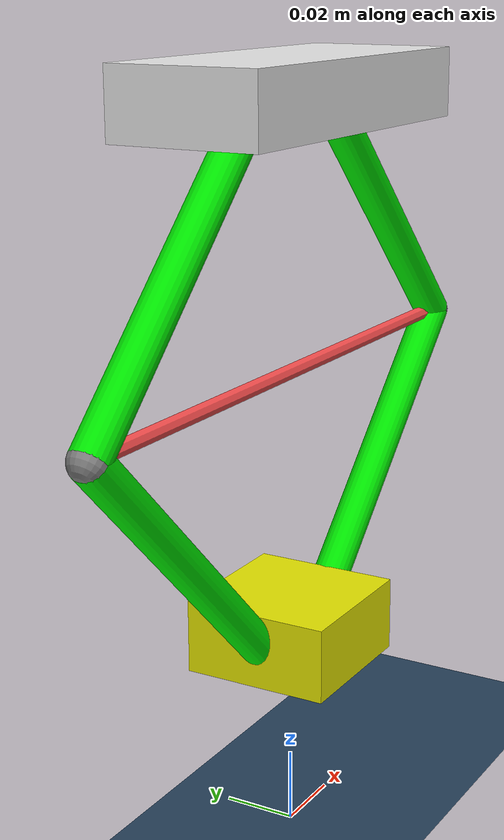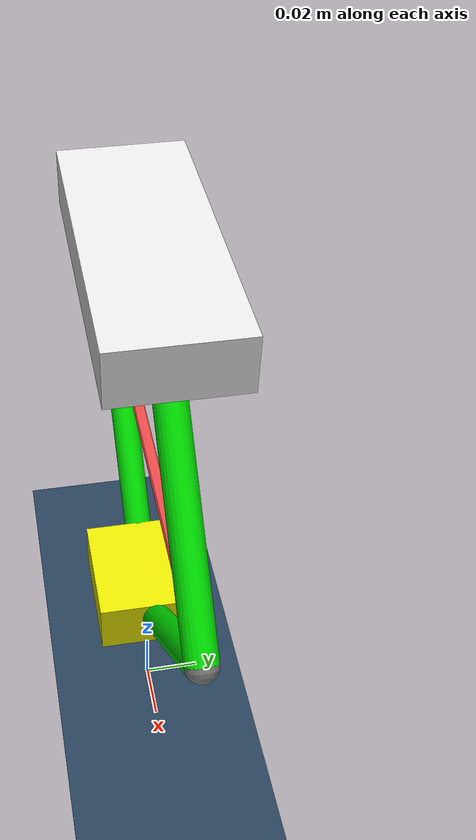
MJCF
<mujoco>
	<!-- 侧杆较长 -->
	<option timestep="0.0001" integrator="RK4" gravity="0 0 -10">
		<flag sensornoise="enable" contact="enable" energy="enable" />
	</option>

	<visual>
		<headlight diffuse="0.6 0.6 0.6" ambient="0.3 0.3 0.3" specular="0 0 0" />
		<rgba haze="0.15 0.25 0.35 1" />
		<global azimuth="150" elevation="-20" />
	</visual>

	<asset>
		<texture type="skybox" builtin="gradient" rgb1="0.3 0.5 0.7" rgb2="0 0 0" width="512"
			height="3072" />
		<texture type="2d" name="groundplane" builtin="checker" mark="edge" rgb1="0.2 0.3 0.4"
			rgb2="0.1 0.2 0.3"
			markrgb="0.8 0.8 0.8" width="300" height="300" />
		<material name="groundplane" texture="groundplane" texuniform="true" texrepeat="5 5"
			reflectance="0.2" />
	</asset>

	<default>
		<equality solref="0.005 1" />
	</default>

	<worldbody>
		<light pos="0 0 0.3" dir="0 0 -1" directional="false" />
		<light diffuse=".5 .5 .5" pos="0 0 0.3" dir="0 0 -1" />
		<geom name="floor" size="0 0 .125" type="plane" material="groundplane" conaffinity="15"
			condim="3" />
		<body name="hopper" pos="0 0 0.2">
			<freejoint/>
			<geom type="box" size=".05 .02 .009" rgba=".9 .9 .9 1" mass="0.0333" />
			<site name="imu" size="0.001" pos="0 0 0" />

			<body name="thigh_left" pos="-0.05202 0 -0.03536" euler="0 45 0">
				<joint name="hip_left" type="hinge" pos="0 0 0.05" axis="0 -1 0" range="-45 90"
					limited="true" />
				<geom type="cylinder" size=".005 .05" rgba="0 .9 0 1" mass="0.1" />
				<site name="s_left" pos="0 0 -0.05" />
				<body name="leg_left" pos="0.05 0 -0.05" euler="0 -90 0">
					<joint name="knee_left" type="hinge" pos="0 0 0.05" axis="0 -1 0" />
					<geom type="cylinder" size=".005 .05" rgba="0 .9 0 1" mass="0.1" />
				</body>
			</body>
			<body name="thigh_right" pos="0.05202 0 -0.03536" euler="0 -45 0">
				<joint name="hip_right" type="hinge" pos="0 0 0.05" axis="0 -1 0" range="-90 45"
					limited="true" />
				<geom type="cylinder" size=".005 .05" rgba="0 .9 0 1" mass="0.1" />
				<site name="s_right" pos="0 0 -0.05" />
				<body name="leg_right" pos="-0.05 0 -0.05" euler="0 90 0">
					<joint name="knee_right" type="hinge" pos="0 0 0.05" axis="0 -1 0" />
					<geom type="cylinder" size=".005 .05" rgba="0 .9 0 1" mass="0.1" />
				</body>
			</body>
		</body>
		<body name="foot" pos="0 0 0.05858">
			<freejoint />
			<geom type="box" size=".02 .02 .01" rgba=".9 .9 .0 1" mass="0.0333" />
			<site name="foot_ground" pos="0 0 0" />
		</body>
	</worldbody>

	<contact>
		<exclude name="e0" body1="hopper" body2="thigh_left" />
		<exclude name="e1" body1="hopper" body2="thigh_right" />
		<exclude name="e2" body1="thigh_left" body2="leg_left" />
		<exclude name="e3" body1="thigh_right" body2="leg_right" />
		<exclude name="e4" body1="leg_left" body2="foot" />
		<exclude name="e5" body1="leg_right" body2="foot" />
	</contact>

	<equality>
		<connect name="c1" body1="leg_left" body2="foot" anchor="0 0 -0.05" />
		<connect name="c2" body1="leg_right" body2="foot" anchor="0 0 -0.05" />
	</equality>

	<tendon>
		<spatial name='tendon1' range="0.001 0.2" limited="true" width=".002" rgba=".95 .3 .3 1"
			stiffness="5" springlength="0.1">
			<site site="s_left" />
			<site site="s_right" />
		</spatial>
	</tendon>

	<actuator>
		<motor name="left_hip_roll" joint="hip_left" gear="5" ctrlrange="-4 4"
			ctrllimited="true"/>
		<motor name="right_hip_roll" joint="hip_right" gear="5" ctrlrange="-4 4"
			ctrllimited="true"/>
	</actuator>

	<sensor>
		<jointpos name="hip_pos_sensor" joint="hip_left" noise="0" />
		<jointvel name="hip_vel_sensor" joint="hip_left" noise="0" />
		<accelerometer name="acceleration_sensor" site="imu" />
		<velocimeter name="velocity_sensor" site="imu" />
		<force name="ground_force_sensor" site="foot_ground" />
	</sensor>

</mujoco>
